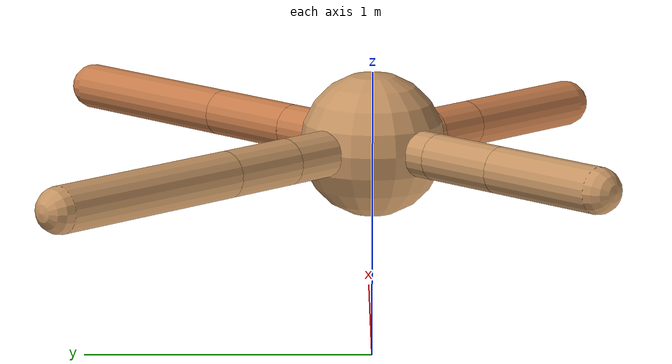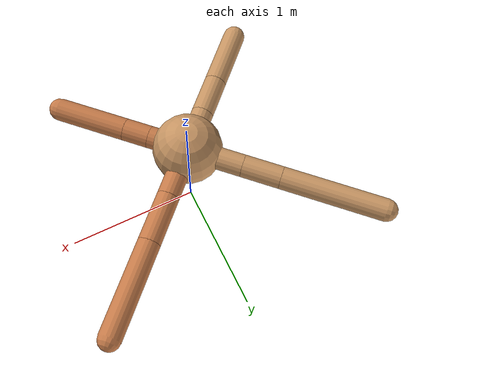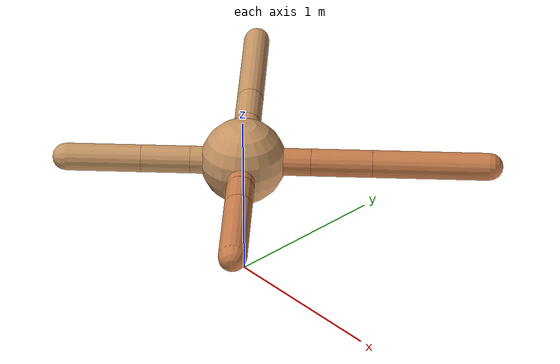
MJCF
<mujoco model="ant">
  <compiler angle="degree" coordinate="local" inertiafromgeom="true" />
  <option integrator="RK4" timestep="0.01" />
  <custom>
    <numeric data="0.0 0.0 0.55 1.0 0.0 0.0 0.0 0.0 1.0 0.0 -1.0 0.0 -1.0 0.0 1.0" name="init_qpos" />
  </custom>
  <default>
    <joint armature="1" damping="1" limited="true" />
    <geom conaffinity="0" condim="3" density="5.0" friction="1.5 0.1 0.1" margin="0.01" rgba="0.8 0.6 0.4 1" />
  </default>
  <worldbody>
    <body name="torso" pos="0 0 0.75">
      <geom name="torso_geom" pos="0 0 0" size="0.25" type="sphere" />

      <body name="front_left_leg" pos="0 0 0">
        <geom fromto="0.0 0.0 0.0 0.27735094691476947 0.27735094691476947 0.0" name="aux_1_geom" size="0.08" type="capsule" rgba=".8 .5 .3 1" />
        <body name="aux_1" pos="0.27735094691476947 0.27735094691476947 0.0">
          <joint axis="0 0 1" name="hip_1" pos="0.0 0.0 0.0" range="-40 40" type="hinge" />
          <geom fromto="0.0 0.0 0.0 0.25132086564189343 0.25132086564189343 0.0" name="left_leg_geom" size="0.08" type="capsule" rgba=".8 .5 .3 1" />
          <body pos="0.25132086564189343 0.25132086564189343 0.0" name="front_left_foot">
            <joint axis="-1 1 0" name="ankle_1" pos="0.0 0.0 0.0" range="30 100" type="hinge" />
            <geom fromto="0.0 0.0 0.0 0.4770666524607492 0.4770666524607492 0.0" name="left_ankle_geom" size="0.08" type="capsule" rgba=".8 .5 .3 1" />
          </body>
        </body>
      </body>
      <body name="front_right_leg" pos="0 0 0">
        <geom fromto="0.0 0.0 0.0 -0.2922421352238537 0.2922421352238537 0.0" name="aux_2_geom" size="0.08" type="capsule" />
        <body name="aux_2" pos="-0.2922421352238537 0.2922421352238537 0.0">
          <joint axis="0 0 1" name="hip_2" pos="0.0 0.0 0.0" range="-40 40" type="hinge" />
          <geom fromto="0.0 0.0 0.0 -0.19718220714195245 0.19718220714195245 0.0" name="right_leg_geom" size="0.08" type="capsule" />
          <body pos="-0.19718220714195245 0.19718220714195245 0.0" name="front_right_foot">
            <joint axis="1 1 0" name="ankle_2" pos="0.0 0.0 0.0" range="-100 -30" type="hinge" />
            <geom fromto="0.0 0.0 0.0 -0.5253447808011089 0.5253447808011089 0.0" name="right_ankle_geom" size="0.08" type="capsule" />
          </body>
        </body>
      </body>
      <body name="left_back_leg" pos="0 0 0">
        <geom fromto="0.0 0.0 0.0 -0.2163016334576252 -0.2163016334576252 0.0" name="aux_3_geom" size="0.08" type="capsule" />
        <body name="aux_3" pos="-0.2163016334576252 -0.2163016334576252 0.0">
          <joint axis="0 0 1" name="hip_3" pos="0.0 0.0 0.0" range="-40 40" type="hinge" />
          <geom fromto="0.0 0.0 0.0 -0.20260023841976113 -0.20260023841976113 0.0" name="back_leg_geom" size="0.08" type="capsule" />
          <body pos="-0.20260023841976113 -0.20260023841976113 0.0" name="left_back_foot">
            <joint axis="-1 1 0" name="ankle_3" pos="0.0 0.0 0.0" range="-100 -30" type="hinge" />
            <geom fromto="0.0 0.0 0.0 -0.3099949541873532 -0.3099949541873532 0.0" name="third_ankle_geom" size="0.08" type="capsule" />
          </body>
        </body>
      </body>
      <body name="right_back_leg" pos="0 0 0">
        <geom fromto="0.0 0.0 0.0 0.20409688232546006 -0.20409688232546006 0.0" name="aux_4_geom" size="0.08" type="capsule" rgba=".8 .5 .3 1" />
        <body name="aux_4" pos="0.20409688232546006 -0.20409688232546006 0.0">
          <joint axis="0 0 1" name="hip_4" pos="0.0 0.0 0.0" range="-40 40" type="hinge" />
          <geom fromto="0.0 0.0 0.0 0.13254934613625083 -0.13254934613625083 0.0" name="rightback_leg_geom" size="0.08" type="capsule" rgba=".8 .5 .3 1" />
          <body pos="0.13254934613625083 -0.13254934613625083 0.0" name="right_back_foot">
            <joint axis="1 1 0" name="ankle_4" pos="0.0 0.0 0.0" range="30 100" type="hinge" />
            <geom fromto="0.0 0.0 0.0 0.3611104773488162 -0.3611104773488162 0.0" name="fourth_ankle_geom" size="0.08" type="capsule" rgba=".8 .5 .3 1" />
          </body>
        </body>
      </body>
    </body>
  </worldbody>
  <actuator>
    <motor ctrllimited="true" ctrlrange="-1.0 1.0" joint="hip_4" gear="150" />
    <motor ctrllimited="true" ctrlrange="-1.0 1.0" joint="ankle_4" gear="150" />
    <motor ctrllimited="true" ctrlrange="-1.0 1.0" joint="hip_1" gear="150" />
    <motor ctrllimited="true" ctrlrange="-1.0 1.0" joint="ankle_1" gear="150" />
    <motor ctrllimited="true" ctrlrange="-1.0 1.0" joint="hip_2" gear="150" />
    <motor ctrllimited="true" ctrlrange="-1.0 1.0" joint="ankle_2" gear="150" />
    <motor ctrllimited="true" ctrlrange="-1.0 1.0" joint="hip_3" gear="150" />
    <motor ctrllimited="true" ctrlrange="-1.0 1.0" joint="ankle_3" gear="150" />
  </actuator>
</mujoco>
